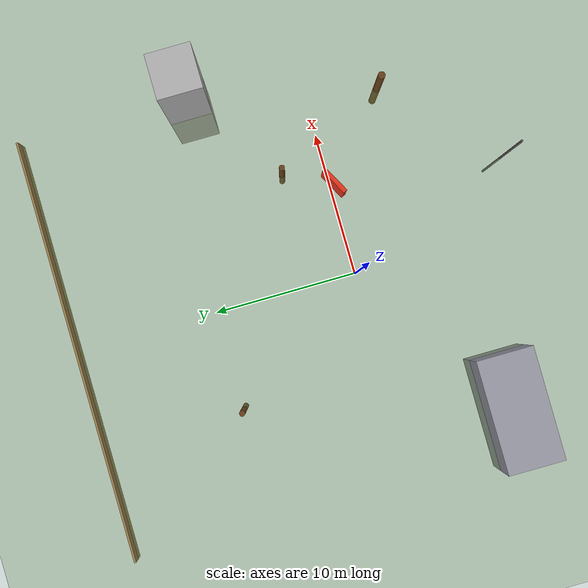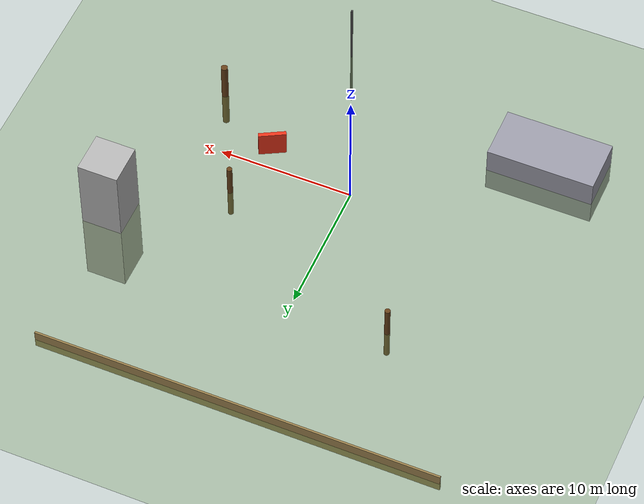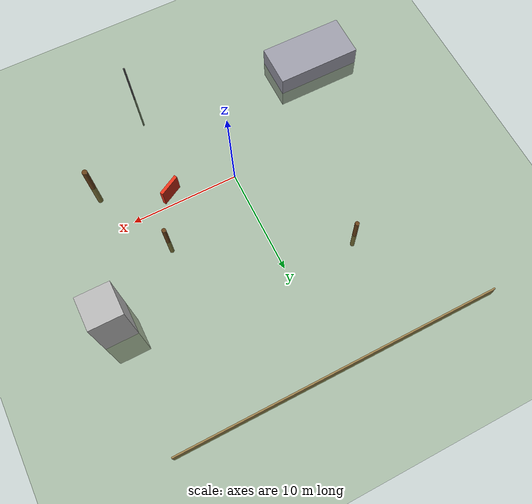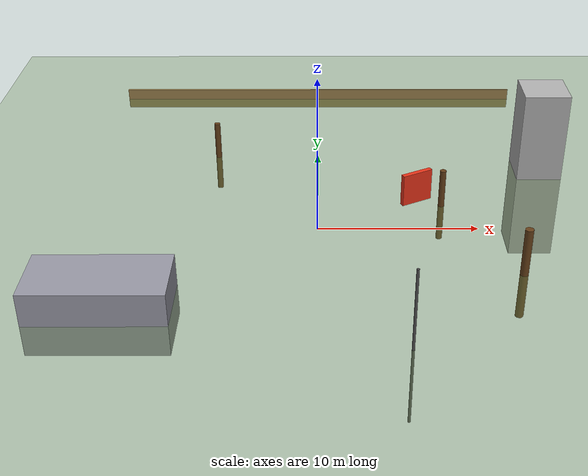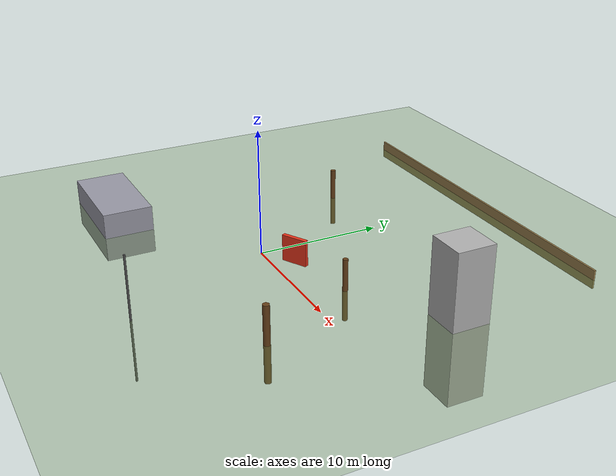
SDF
<?xml version="1.0" ?>
<sdf version="1.9">
  <world name="outdoor_obstacles">

    <physics name="default_physics" default="true" type="ode">
      <max_step_size>0.004</max_step_size>
      <real_time_factor>1.0</real_time_factor>
      <real_time_update_rate>250</real_time_update_rate>
    </physics>

    <plugin filename="gz-sim-physics-system"
            name="gz::sim::systems::Physics"/>
    <plugin filename="gz-sim-sensors-system"
            name="gz::sim::systems::Sensors">
      <render_engine>ogre2</render_engine>
    </plugin>
    <plugin filename="gz-sim-scene-broadcaster-system"
            name="gz::sim::systems::SceneBroadcaster"/>
    <plugin filename="gz-sim-user-commands-system"
            name="gz::sim::systems::UserCommands"/>

    <!-- Lighting -->
    <light name="sun" type="directional">
      <cast_shadows>true</cast_shadows>
      <pose>0 0 500 0.1 0.1 0</pose>
      <diffuse>0.9 0.9 0.9 1</diffuse>
      <specular>0.3 0.3 0.3 1</specular>
      <direction>-0.5 0.1 -0.9</direction>
    </light>

    <!-- Ground plane -->
    <model name="ground_plane">
      <static>true</static>
      <link name="link">
        <collision name="collision">
          <geometry><plane><normal>0 0 1</normal><size>200 200</size></plane></geometry>
        </collision>
        <visual name="visual">
          <geometry><plane><normal>0 0 1</normal><size>200 200</size></plane></geometry>
          <material>
            <ambient>0.4 0.55 0.3 1</ambient>
            <diffuse>0.4 0.55 0.3 1</diffuse>
          </material>
        </visual>
      </link>
    </model>

    <!-- ── Obstacle course ─────────────────────────────── -->

    <!-- Tree cluster 1 -->
    <model name="tree_1"><static>true</static><pose>8 3 0 0 0 0</pose>
      <link name="trunk"><collision name="c"><geometry><cylinder><radius>0.2</radius><length>5</length></cylinder></geometry></collision>
      <visual name="v"><geometry><cylinder><radius>0.2</radius><length>5</length></cylinder></geometry><material><ambient>0.4 0.25 0.1 1</ambient></material></visual></link></model>

    <model name="tree_2"><static>true</static><pose>12 -5 0 0 0 0</pose>
      <link name="trunk"><collision name="c"><geometry><cylinder><radius>0.25</radius><length>6</length></cylinder></geometry></collision>
      <visual name="v"><geometry><cylinder><radius>0.25</radius><length>6</length></cylinder></geometry><material><ambient>0.4 0.25 0.1 1</ambient></material></visual></link></model>

    <model name="tree_3"><static>true</static><pose>-7 10 0 0 0 0</pose>
      <link name="trunk"><collision name="c"><geometry><cylinder><radius>0.2</radius><length>5</length></cylinder></geometry></collision>
      <visual name="v"><geometry><cylinder><radius>0.2</radius><length>5</length></cylinder></geometry><material><ambient>0.4 0.25 0.1 1</ambient></material></visual></link></model>

    <!-- Building block 1 — tall narrow tower -->
    <model name="building_1"><static>true</static><pose>15 8 0 0 0 0</pose>
      <link name="link"><collision name="c"><geometry><box><size>3 3 12</size></box></geometry></collision>
      <visual name="v"><geometry><box><size>3 3 12</size></box></geometry><material><ambient>0.7 0.7 0.7 1</ambient></material></visual></link></model>

    <!-- Building block 2 — wide low structure -->
    <model name="building_2"><static>true</static><pose>-12 -8 0 0 0 0</pose>
      <link name="link"><collision name="c"><geometry><box><size>8 4 4</size></box></geometry></collision>
      <visual name="v"><geometry><box><size>8 4 4</size></box></geometry><material><ambient>0.6 0.6 0.65 1</ambient></material></visual></link></model>

    <!-- Power pole -->
    <model name="pole_1"><static>true</static><pose>5 -12 0 0 0 0</pose>
      <link name="link"><collision name="c"><geometry><cylinder><radius>0.08</radius><length>10</length></cylinder></geometry></collision>
      <visual name="v"><geometry><cylinder><radius>0.08</radius><length>10</length></cylinder></geometry><material><ambient>0.3 0.3 0.3 1</ambient></material></visual></link></model>

    <!-- Floating obstacle at drone flight height (3m) -->
    <model name="float_box_1"><static>true</static><pose>6 0 3 0 0 0.5</pose>
      <link name="link"><collision name="c"><geometry><box><size>2 0.3 2</size></box></geometry></collision>
      <visual name="v"><geometry><box><size>2 0.3 2</size></box></geometry><material><ambient>0.9 0.2 0.1 1</ambient></material></visual></link></model>

    <!-- Fence line -->
    <model name="fence_1"><static>true</static><pose>0 20 0 0 0 0</pose>
      <link name="link"><collision name="c"><geometry><box><size>30 0.15 1.5</size></box></geometry></collision>
      <visual name="v"><geometry><box><size>30 0.15 1.5</size></box></geometry><material><ambient>0.6 0.5 0.3 1</ambient></material></visual></link></model>

  </world>
</sdf>
